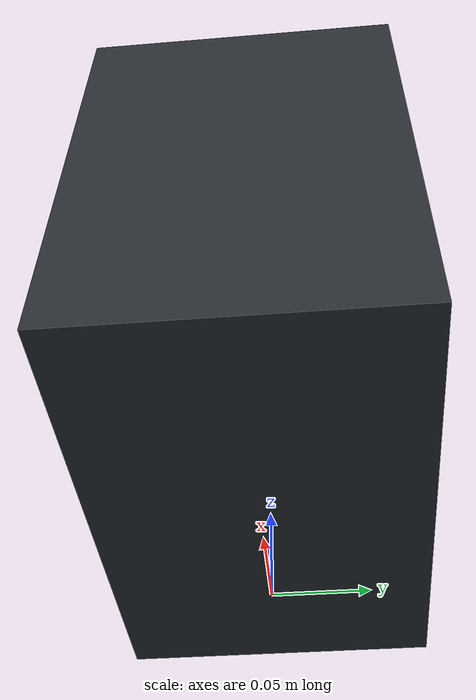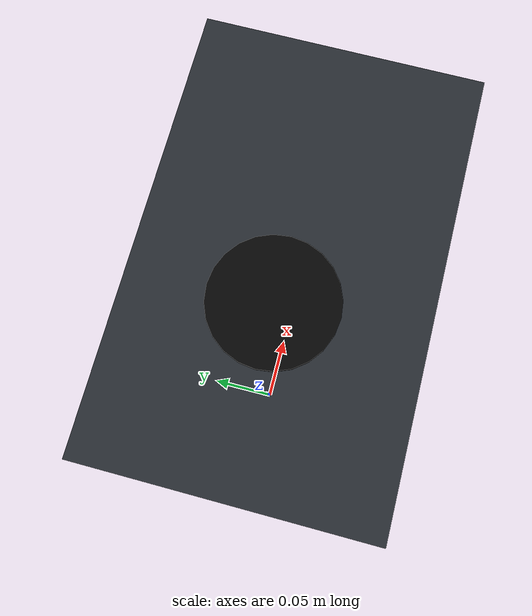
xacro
<?xml version="1.0"?>
<robot xmlns:xacro="http://www.ros.org/wiki/xacro" name="gp_robot">
  <xacro:property name="chassis_front_overhang" value="0.19"/>
  <xacro:property name="chassis_rear_overhang" value="0.06"/>
  <xacro:property name="chassis_length" value="${chassis_front_overhang + chassis_rear_overhang}"/>
  <xacro:property name="chassis_width" value="0.16"/>
  <xacro:property name="chassis_height" value="0.23"/>

  <xacro:property name="base_link_z" value="0.05"/>

  <!-- Chassis box center relative to base_link. -->
  <xacro:property name="chassis_center_x" value="${(chassis_front_overhang - chassis_rear_overhang) / 2.0}"/>
  <xacro:property name="chassis_center_z" value="${chassis_height / 2.0 - base_link_z}"/>

  <material name="chassis_dark">
    <color rgba="0.15 0.17 0.19 1.0"/>
  </material>
  <material name="sensor_black">
    <color rgba="0.02 0.02 0.02 1.0"/>
  </material>
  <material name="imu_blue">
    <color rgba="0.1 0.28 0.55 1.0"/>
  </material>

  <link name="base_footprint"/>

  <joint name="base_footprint_to_base_link" type="fixed">
    <parent link="base_footprint"/>
    <child link="base_link"/>
    <origin xyz="0.0 0.0 ${base_link_z}" rpy="0 0 0"/>
  </joint>

  <link name="base_link">
    <visual>
      <origin xyz="${chassis_center_x} 0 ${chassis_center_z}" rpy="0 0 0"/>
      <geometry>
        <box size="${chassis_length} ${chassis_width} ${chassis_height}"/>
      </geometry>
      <material name="chassis_dark"/>
    </visual>
    <collision>
      <origin xyz="${chassis_center_x} 0 ${chassis_center_z}" rpy="0 0 0"/>
      <geometry>
        <box size="${chassis_length} ${chassis_width} ${chassis_height}"/>
      </geometry>
    </collision>
  </link>

  <!-- LiDAR measurement from base_footprint: x=0.04, y=0.001, z=0.22 from ground.
       base_link is 0.05 above ground, so base_link -> laser z = 0.17. -->
  <joint name="base_link_to_laser" type="fixed">
    <parent link="base_link"/>
    <child link="laser"/>
    <origin xyz="0.04 0.001 0.17" rpy="0 0 0"/>
  </joint>

  <link name="laser">
    <visual>
      <origin xyz="0 0 0" rpy="0 0 0"/>
      <geometry>
        <cylinder radius="0.035" length="0.03"/>
      </geometry>
      <material name="sensor_black"/>
    </visual>
    <collision>
      <origin xyz="0 0 0" rpy="0 0 0"/>
      <geometry>
        <cylinder radius="0.035" length="0.03"/>
      </geometry>
    </collision>
  </link>

  <!-- IMU measurement from base_footprint: x=0.12, y=0.001, z=0.122 from ground.
       base_link is 0.05 above ground, so base_link -> imu_link z = 0.072. -->
  <joint name="base_link_to_imu_link" type="fixed">
    <parent link="base_link"/>
    <child link="imu_link"/>
    <origin xyz="0.12 0.001 0.072" rpy="0 0 0"/>
  </joint>

  <link name="imu_link">
    <visual>
      <origin xyz="0 0 0" rpy="0 0 0"/>
      <geometry>
        <box size="0.035 0.025 0.012"/>
      </geometry>
      <material name="imu_blue"/>
    </visual>
    <collision>
      <origin xyz="0 0 0" rpy="0 0 0"/>
      <geometry>
        <box size="0.035 0.025 0.012"/>
      </geometry>
    </collision>
  </link>
</robot>
